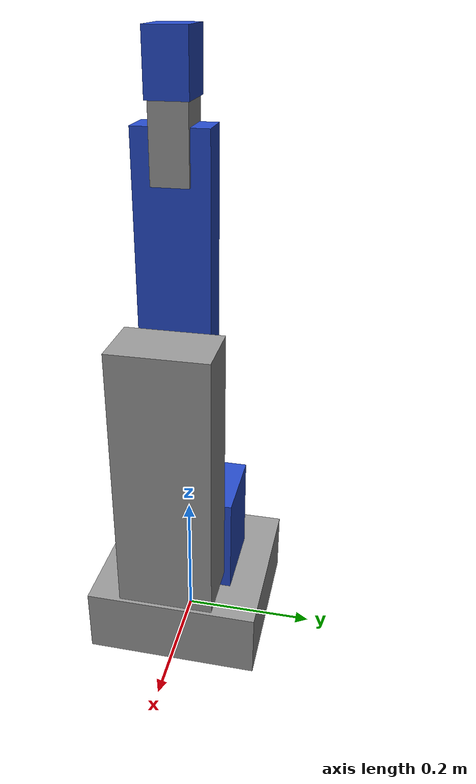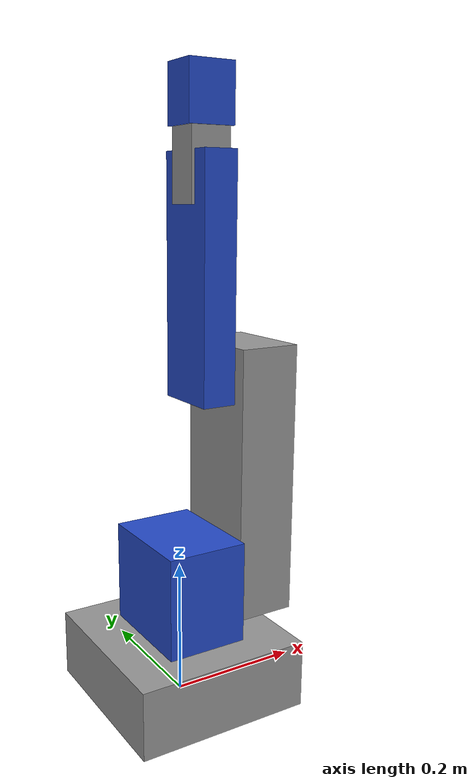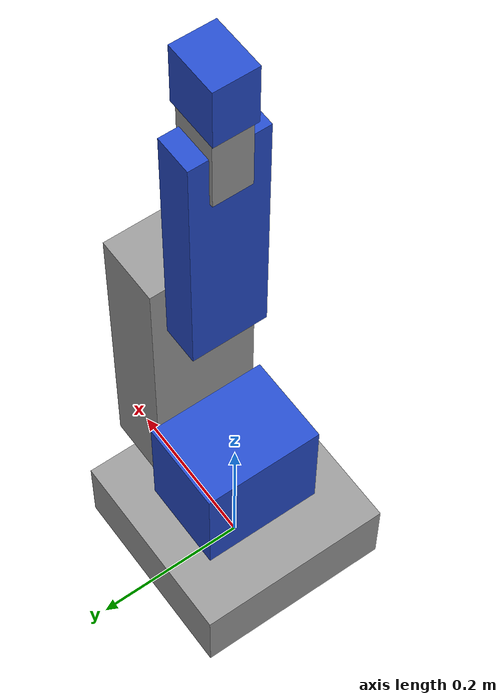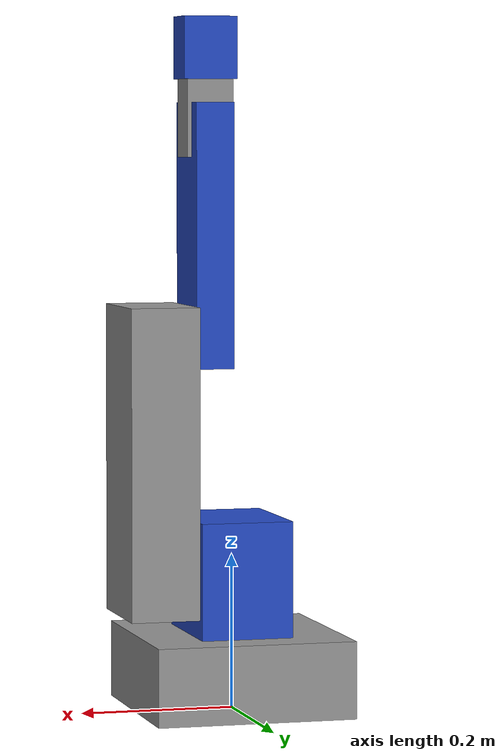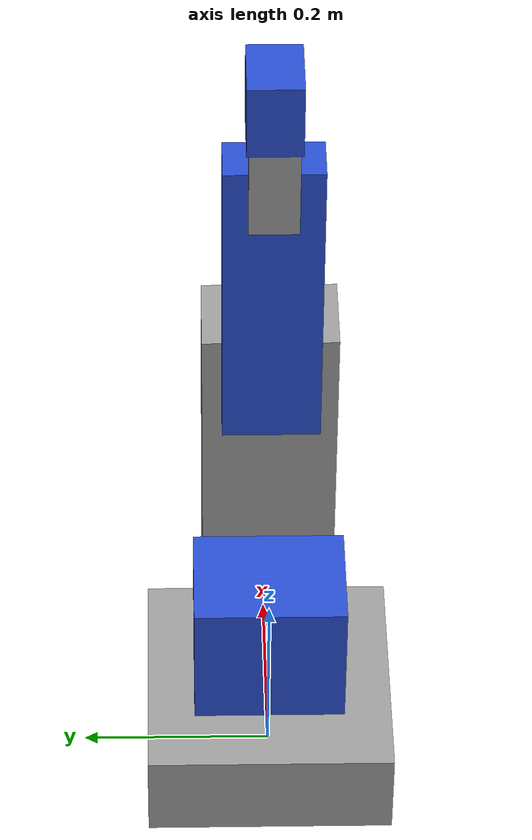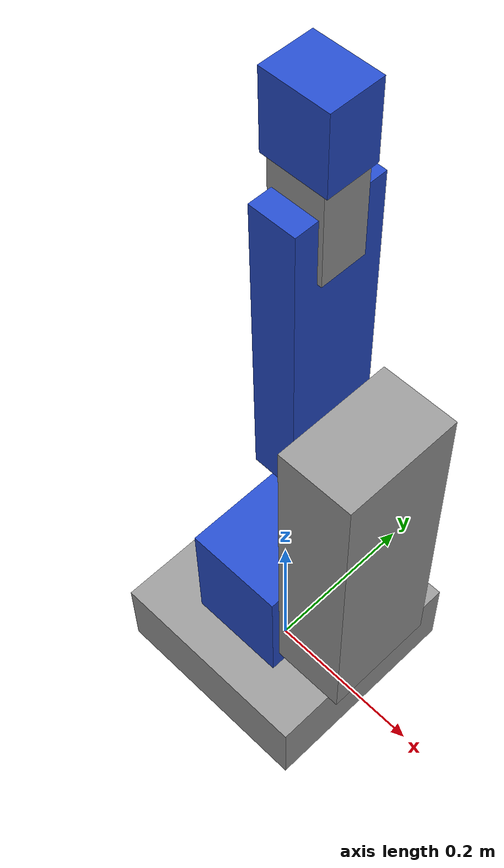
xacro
<?xml version="1.0"?>
<robot xmlns:xacro="http://www.ros.org/wiki/xacro">

    <link name="base_link">
        <visual>
            <geometry>
                <box size="0.26 0.26 0.1" />
            </geometry>
            <origin xyz="0.0 0 0.05" rpy="0 0 0" />
            <material name="grey" />
        </visual>
        <collision>
            <geometry>
                <box size="0.26 0.26 0.1" />
            </geometry>
            <origin xyz="0 0 0.05" rpy="0 0 0" />
        </collision>
    </link>

    <link name="link_1">
        <visual>
            <geometry>
                <box size="0.12 0.16 0.15" />
            </geometry>
            <origin xyz="0 0 0.075" rpy="0 0 0" />
            <material name="blue" />
        </visual>
        <collision>
            <geometry>
                <box size="0.12 0.16 0.15" />
            </geometry>
            <origin xyz="0 0 0.075" rpy="0 0 0" />
        </collision>
    </link>

    <link name="link_2">
        <visual>
            <geometry>
                <box size="0.09 0.14 0.4" />
            </geometry>
            <origin xyz="0.045 0 0.15" rpy="0 0 0" />
            <material name="grey" />
        </visual>
        <collision>
            <geometry>
                <box size="0.09 0.14 0.4" />
            </geometry>
            <origin xyz="0.045 0 0.15" rpy="0 0 0" />
        </collision>
    </link>

    <link name="link_3">
        <visual>
            <geometry>
                <box size="0.05 0.1 0.34" />
            </geometry>
            <origin xyz="-0.025 0 0.14" rpy="0 0 0" />
            <material name="blue" />
        </visual>
        <collision>
            <geometry>
                <box size="0.05 0.1 0.34" />
            </geometry>
            <origin xyz="-0.025 0 0.14" rpy="0 0 0" />
        </collision>
    </link>

    <link name="link_4">
        <visual>
            <geometry>
                <box size="0.06 0.05 0.1" />
            </geometry>
            <origin xyz="0 0 -0.005" rpy="0 0 0" />
            <material name="grey" />
        </visual>
        <collision>
            <geometry>
                <box size="0.06 0.05 0.1" />
            </geometry>
            <origin xyz="0 0 -0.005" rpy="0 0 0" />
        </collision>
    </link>

    <link name="link_5">
        <visual>
            <geometry>
                <box size="0.07 0.055 0.08" />
            </geometry>
            <origin xyz="0 0 0.04" rpy="0 0 0" />
            <material name="blue" />
        </visual>
        <collision>
            <geometry>
                <box size="0.07 0.055 0.08" />
            </geometry>
            <origin xyz="0 0 0.04" rpy="0 0 0" />
        </collision>
    </link>

    <link name="tool_link" />

    <!-- +++++++++++++++++++++++++++++++++++++ joints +++++++++++++++++++++++++++++++++++++ -->

    <joint name="joint1" type="revolute">
        <parent link="base_link" />
        <child link="link_1" />
        <origin xyz="0 0 0.1" rpy="0 0 0" />
        <axis xyz="0 0 1" />
        <limit effort="1000.0" velocity="1.0" lower="-3.14" upper="3.14" />
    </joint>

    <joint name="joint2" type="revolute">
        <parent link="link_1" />
        <child link="link_2" />
        <origin xyz="0.06 0 0.075" rpy="0 0 0" />
        <axis xyz="1 0 0" />
        <limit effort="1000.0" velocity="1.0" lower="-1.57" upper="1.57" />
    </joint>

    <joint name="joint3" type="revolute">
        <parent link="link_2" />
        <child link="link_3" />
        <origin xyz="0 0 0.3" rpy="0 0 0" />
        <axis xyz="1 0 0" />
        <limit effort="1000.0" velocity="1.0" lower="-2.355" upper="2.355" />
    </joint>

    <joint name="joint4" type="revolute">
        <parent link="link_3" />
        <child link="link_4" />
        <origin xyz="-0.025 0 0.295" rpy="0 0 0" />
        <axis xyz="1 0 0" />
        <limit effort="1000.0" velocity="1.0" lower="-1.57" upper="1.57" />
    </joint>

    <joint name="joint5" type="revolute">
        <parent link="link_4" />
        <child link="link_5" />
        <origin xyz="0 0 0.045" rpy="0 0 0" />
        <axis xyz="0 0 1" />
        <limit effort="1000.0" velocity="1.0" lower="-3.14" upper="3.14" />
    </joint>

    <joint name="joint6" type="fixed">
        <parent link="link_5" />
        <child link="tool_link" />
        <origin xyz="0 0 0.12" rpy="0 0 0" />
    </joint>

</robot>
